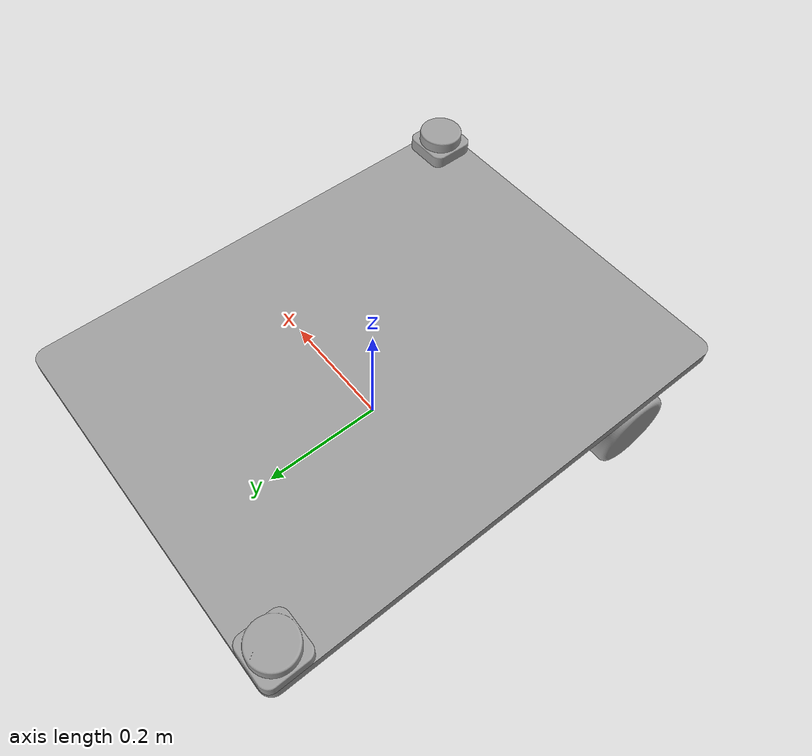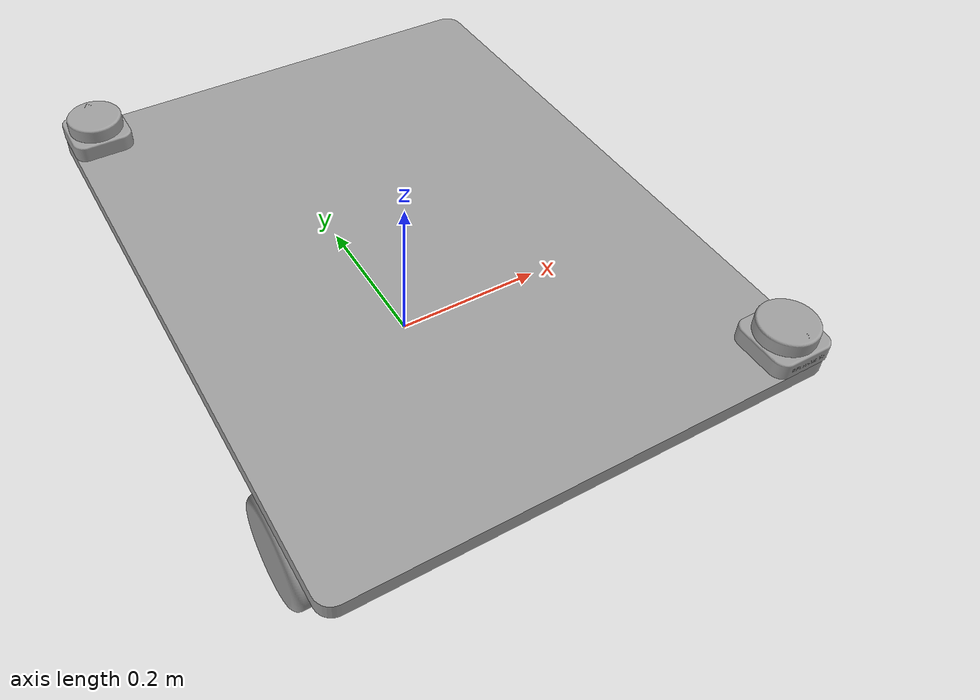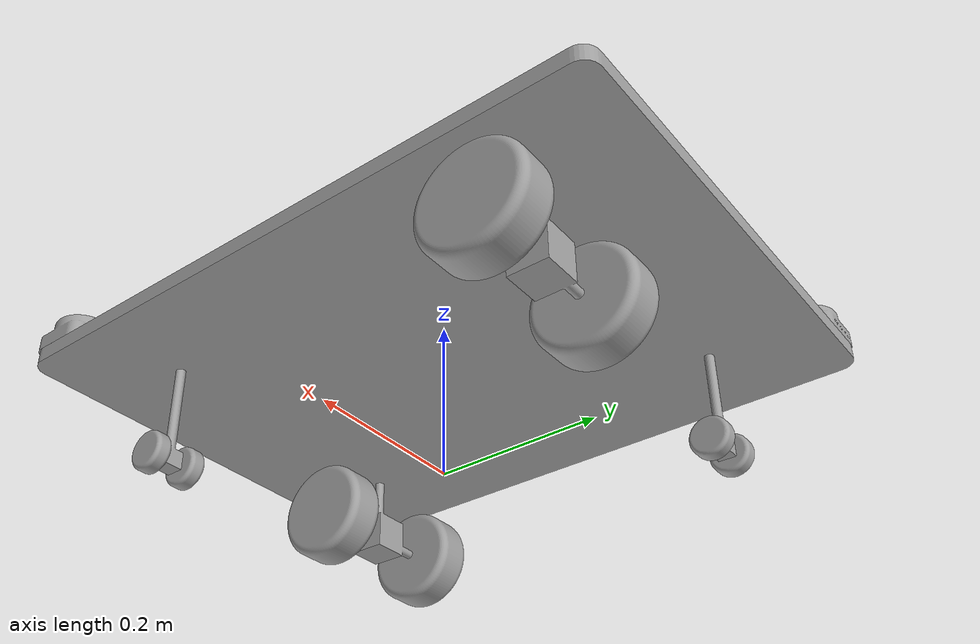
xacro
<?xml version="1.0" ?>
<robot name="ats"
    xmlns:xacro="http://www.ros.org/wiki/xacro">

    <xacro:include filename="$(find ats_description)/urdf/materials.xacro" />
    <xacro:include filename="$(find ats_description)/urdf/ats.trans" />
    <xacro:include filename="$(find ats_description)/urdf/ats.gazebo" />

    <!-- Macro Properties -->

    <!-- Varliables -->
    <xacro:property name="PI" value="3.1415926"/>

    <!-- Color -->
    <material name="black">
        <color rgba="0.0 0.0 0.0 1.0"/>
    </material>

    <!-- Chassis Properties -->
    <xacro:property name="base_link_length" value="0.1"/>
    <xacro:property name="base_link_width" value="0.08"/>
    <xacro:property name="ground_distance" value=""/>

    <!-- ########## 连杆 ########## -->

    <!-- 虚拟连杆：消除惯性 -->
    <link name="dummy">
    </link>

    <!-- 根连杆 -->
    <link name="base_link">
        <inertial>
            <origin xyz="-3.5381115631119146e-07 -6.069851163093431e-17 0.15800171643032818" rpy="0 0 0"/>
            <mass value="75.278639606354"/>
            <inertia ixx="3.911899" iyy="2.314591" izz="6.221472" ixy="-3.1e-05" iyz="0.0" ixz="-0.0"/>
        </inertial>
        <visual>
            <origin xyz="0 0 0" rpy="0 0 0"/>
            <geometry>
                <mesh filename="package://ats_description/meshes/base_link.stl" scale="0.001 0.001 0.001"/>
            </geometry>
            <material name="_"/>
        </visual>
        <collision>
            <origin xyz="0 0 0" rpy="0 0 0"/>
            <geometry>
                <mesh filename="package://ats_description/meshes/base_link.stl" scale="0.001 0.001 0.001"/>
            </geometry>
        </collision>
    </link>

    <!-- RPLiDAR S2 1 -->
    <link name="rplidar_s2_1_1">
        <inertial>
            <origin xyz="-5.069135639579336e-07 -1.9284390547769092e-05 0.017499881114527827" rpy="0 0 0"/>
            <mass value="1.4755797019735095"/>
            <inertia ixx="0.000778" iyy="0.000779" izz="0.001203" ixy="0.0" iyz="-0.0" ixz="-0.0"/>
        </inertial>
        <visual>
            <origin xyz="0.26526 -0.3565 -0.168" rpy="0 0 0"/>
            <geometry>
                <mesh filename="package://ats_description/meshes/rplidar_s2_1_1.stl" scale="0.001 0.001 0.001"/>
            </geometry>
            <material name="_"/>
        </visual>
        <collision>
            <origin xyz="0.26526 -0.3565 -0.168" rpy="0 0 0"/>
            <geometry>
                <mesh filename="package://ats_description/meshes/rplidar_s2_1_1.stl" scale="0.001 0.001 0.001"/>
            </geometry>
        </collision>
    </link>

    <!-- RPLiDAR S2 2 -->
    <link name="rplidar_s2_2_1">
        <inertial>
            <origin xyz="5.069135636248667e-07 1.9284390547769092e-05 0.017499881114527854" rpy="0 0 0"/>
            <mass value="1.4755797019735115"/>
            <inertia ixx="0.000778" iyy="0.000779" izz="0.001203" ixy="0.0" iyz="0.0" ixz="0.0"/>
        </inertial>
        <visual>
            <origin xyz="-0.26526 0.3565 -0.168" rpy="0 0 0"/>
            <geometry>
                <mesh filename="package://ats_description/meshes/rplidar_s2_2_1.stl" scale="0.001 0.001 0.001"/>
            </geometry>
            <material name="_"/>
        </visual>
        <collision>
            <origin xyz="-0.26526 0.3565 -0.168" rpy="0 0 0"/>
            <geometry>
                <mesh filename="package://ats_description/meshes/rplidar_s2_2_1.stl" scale="0.001 0.001 0.001"/>
            </geometry>
        </collision>
    </link>

    <!-- 脚轮 1 -->
    <link name="caster_1_1">
        <inertial>
            <origin xyz="-1.6391285551087265e-10 0.0 6.938893903907228e-18" rpy="0 0 0"/>
            <mass value="0.6178921156215165"/>
            <inertia ixx="0.000179" iyy="0.000479" izz="0.000479" ixy="-0.0" iyz="0.0" ixz="-0.0"/>
        </inertial>
        <visual>
            <origin xyz="0.17926 -0.26 -0.025" rpy="0 0 0"/>
            <geometry>
                <mesh filename="package://ats_description/meshes/caster_1_1.stl" scale="0.001 0.001 0.001"/>
            </geometry>
            <material name="_"/>
        </visual>
        <collision>
            <origin xyz="0.17926 -0.26 -0.025" rpy="0 0 0"/>
            <geometry>
                <mesh filename="package://ats_description/meshes/caster_1_1.stl" scale="0.001 0.001 0.001"/>
            </geometry>
        </collision>
    </link>

    <!-- 脚轮 2 -->
    <link name="caster_2_1">
        <inertial>
            <origin xyz="-1.6391291102202388e-10 0.0 3.469446951953614e-18" rpy="0 0 0"/>
            <mass value="0.6178921156215165"/>
            <inertia ixx="0.000179" iyy="0.000479" izz="0.000479" ixy="0.0" iyz="0.0" ixz="0.0"/>
        </inertial>
        <visual>
            <origin xyz="-0.18526 0.26 -0.025" rpy="0 0 0"/>
            <geometry>
                <mesh filename="package://ats_description/meshes/caster_2_1.stl" scale="0.001 0.001 0.001"/>
            </geometry>
            <material name="_"/>
        </visual>
        <collision>
            <origin xyz="-0.18526 0.26 -0.025" rpy="0 0 0"/>
            <geometry>
                <mesh filename="package://ats_description/meshes/caster_2_1.stl" scale="0.001 0.001 0.001"/>
            </geometry>
        </collision>
    </link>

    <!-- 轮毂电机 1 -->
    <link name="wheel_1_1">
        <inertial>
            <origin xyz="5.774982647643867e-05 0.0 1.3877787807814457e-17" rpy="0 0 0"/>
            <mass value="4.998293010395846"/>
            <inertia ixx="0.01005" iyy="0.006066" izz="0.006066" ixy="-0.0" iyz="0.0" ixz="0.0"/>
        </inertial>
        <visual>
            <origin xyz="-0.27826 -0.26 -0.064" rpy="0 0 0"/>
            <geometry>
                <mesh filename="package://ats_description/meshes/wheel_1_1.stl" scale="0.001 0.001 0.001"/>
            </geometry>
            <material name="_"/>
        </visual>
        <collision>
            <origin xyz="-0.27826 -0.26 -0.064" rpy="0 0 0"/>
            <geometry>
                <mesh filename="package://ats_description/meshes/wheel_1_1.stl" scale="0.001 0.001 0.001"/>
            </geometry>
        </collision>
    </link>

    <!-- 轮毂电机转接 1 -->
    <link name="adapter_1_1">
        <inertial>
            <origin xyz="-1.1102230246251565e-16 0.0 -0.08577726603955564" rpy="0 0 0"/>
            <mass value="1.0536485500536665"/>
            <inertia ixx="0.000533" iyy="0.001" izz="0.000804" ixy="0.0" iyz="-0.0" ixz="0.0"/>
        </inertial>
        <visual>
            <origin xyz="-0.18526 -0.26 -0.153" rpy="0 0 0"/>
            <geometry>
                <mesh filename="package://ats_description/meshes/adapter_1_1.stl" scale="0.001 0.001 0.001"/>
            </geometry>
            <material name="_"/>
        </visual>
        <collision>
            <origin xyz="-0.18526 -0.26 -0.153" rpy="0 0 0"/>
            <geometry>
                <mesh filename="package://ats_description/meshes/adapter_1_1.stl" scale="0.001 0.001 0.001"/>
            </geometry>
        </collision>
    </link>

    <!-- 轮毂电机转接 2 -->
    <link name="adapter_2_1">
        <inertial>
            <origin xyz="-8.326672684688674e-17 0.0 -0.08577726603955564" rpy="0 0 0"/>
            <mass value="1.0536485500536665"/>
            <inertia ixx="0.000533" iyy="0.001" izz="0.000804" ixy="-0.0" iyz="0.0" ixz="0.0"/>
        </inertial>
        <visual>
            <origin xyz="0.18526 0.26 -0.153" rpy="0 0 0"/>
            <geometry>
                <mesh filename="package://ats_description/meshes/adapter_2_1.stl" scale="0.001 0.001 0.001"/>
            </geometry>
            <material name="_"/>
        </visual>
        <collision>
            <origin xyz="0.18526 0.26 -0.153" rpy="0 0 0"/>
            <geometry>
                <mesh filename="package://ats_description/meshes/adapter_2_1.stl" scale="0.001 0.001 0.001"/>
            </geometry>
        </collision>
    </link>

    <!-- 轮毂电机 2 -->
    <link name="wheel_2_1">
        <inertial>
            <origin xyz="-5.774982647667459e-05 0.0 1.3877787807814457e-17" rpy="0 0 0"/>
            <mass value="4.998293010395846"/>
            <inertia ixx="0.01005" iyy="0.006066" izz="0.006066" ixy="0.0" iyz="0.0" ixz="0.0"/>
        </inertial>
        <visual>
            <origin xyz="-0.09226 -0.26 -0.064" rpy="0 0 0"/>
            <geometry>
                <mesh filename="package://ats_description/meshes/wheel_2_1.stl" scale="0.001 0.001 0.001"/>
            </geometry>
            <material name="_"/>
        </visual>
        <collision>
            <origin xyz="-0.09226 -0.26 -0.064" rpy="0 0 0"/>
            <geometry>
                <mesh filename="package://ats_description/meshes/wheel_2_1.stl" scale="0.001 0.001 0.001"/>
            </geometry>
        </collision>
    </link>

    <!-- 轮毂电机 3 -->
    <link name="wheel_3_1">
        <inertial>
            <origin xyz="-5.7749826476660715e-05 0.0 1.3877787807814457e-17" rpy="0 0 0"/>
            <mass value="4.998293010395846"/>
            <inertia ixx="0.01005" iyy="0.006066" izz="0.006066" ixy="0.0" iyz="0.0" ixz="0.0"/>
        </inertial>
        <visual>
            <origin xyz="0.27826 0.26 -0.064" rpy="0 0 0"/>
            <geometry>
                <mesh filename="package://ats_description/meshes/wheel_3_1.stl" scale="0.001 0.001 0.001"/>
            </geometry>
            <material name="_"/>
        </visual>
        <collision>
            <origin xyz="0.27826 0.26 -0.064" rpy="0 0 0"/>
            <geometry>
                <mesh filename="package://ats_description/meshes/wheel_3_1.stl" scale="0.001 0.001 0.001"/>
            </geometry>
        </collision>
    </link>

    <!-- 轮毂电机 4 -->
    <link name="wheel_4_1">
        <inertial>
            <origin xyz="5.7749826476466426e-05 0.0 1.3877787807814457e-17" rpy="0 0 0"/>
            <mass value="4.998293010395846"/>
            <inertia ixx="0.01005" iyy="0.006066" izz="0.006066" ixy="-0.0" iyz="0.0" ixz="0.0"/>
        </inertial>
        <visual>
            <origin xyz="0.09226 0.26 -0.064" rpy="0 0 0"/>
            <geometry>
                <mesh filename="package://ats_description/meshes/wheel_4_1.stl" scale="0.001 0.001 0.001"/>
            </geometry>
            <material name="_"/>
        </visual>
        <collision>
            <origin xyz="0.09226 0.26 -0.064" rpy="0 0 0"/>
            <geometry>
                <mesh filename="package://ats_description/meshes/wheel_4_1.stl" scale="0.001 0.001 0.001"/>
            </geometry>
        </collision>
    </link>

    <!-- 脚轮转接 2 -->
    <link name="caster_adapter_2_1">
        <inertial>
            <origin xyz="-1.6425794058250176e-10 -3.6137759451548845e-14 -0.08518001846489567" rpy="0 0 0"/>
            <mass value="0.16884779283286586"/>
            <inertia ixx="0.000318" iyy="0.000318" izz="8e-06" ixy="-0.0" iyz="-0.0" ixz="-0.0"/>
        </inertial>
        <visual>
            <origin xyz="-0.18526 0.26 -0.153" rpy="0 0 0"/>
            <geometry>
                <mesh filename="package://ats_description/meshes/caster_adapter_2_1.stl" scale="0.001 0.001 0.001"/>
            </geometry>
            <material name="_"/>
        </visual>
        <collision>
            <origin xyz="-0.18526 0.26 -0.153" rpy="0 0 0"/>
            <geometry>
                <mesh filename="package://ats_description/meshes/caster_adapter_2_1.stl" scale="0.001 0.001 0.001"/>
            </geometry>
        </collision>
    </link>

    <!-- 脚轮转接 1 -->
    <link name="caster_adapter_1_1">
        <inertial>
            <origin xyz="-1.6425791282692614e-10 -3.6193270602780103e-14 -0.08518001846489567" rpy="0 0 0"/>
            <mass value="0.16884779283286586"/>
            <inertia ixx="0.000318" iyy="0.000318" izz="8e-06" ixy="-0.0" iyz="-0.0" ixz="-0.0"/>
        </inertial>
        <visual>
            <origin xyz="0.17926 -0.26 -0.153" rpy="0 0 0"/>
            <geometry>
                <mesh filename="package://ats_description/meshes/caster_adapter_1_1.stl" scale="0.001 0.001 0.001"/>
            </geometry>
            <material name="_"/>
        </visual>
        <collision>
            <origin xyz="0.17926 -0.26 -0.153" rpy="0 0 0"/>
            <geometry>
                <mesh filename="package://ats_description/meshes/caster_adapter_1_1.stl" scale="0.001 0.001 0.001"/>
            </geometry>
        </collision>
    </link>

    <!-- ########## 关节 ########## -->

    <!-- rplidar_s2_1 -> base_link 固定 -->
    <joint name="Rigid_1" type="fixed">
        <origin xyz="-0.26526 0.3565 0.168" rpy="0 0 0"/>
        <parent link="base_link"/>
        <child link="rplidar_s2_1_1"/>
    </joint>

    <!-- rplidar_s2_2 -> base_link 固定 -->
    <joint name="Rigid_2" type="fixed">
        <origin xyz="0.26526 -0.3565 0.168" rpy="0 0 0"/>
        <parent link="base_link"/>
        <child link="rplidar_s2_2_1"/>
    </joint>

    <!-- caster_1 -> caster_adapter_1 旋转 -->
    <joint name="Revolute_7" type="continuous">
        <origin xyz="0.0 0.0 -0.128" rpy="0 0 0"/>
        <parent link="caster_adapter_1_1"/>
        <child link="caster_1_1"/>
        <axis xyz="-1.0 0.0 0.0"/>
    </joint>

    <!-- caster_2 -> caster_adapter_2 旋转 -->
    <joint name="Revolute_8" type="continuous">
        <origin xyz="0.0 0.0 -0.128" rpy="0 0 0"/>
        <parent link="caster_adapter_2_1"/>
        <child link="caster_2_1"/>
        <axis xyz="1.0 0.0 0.0"/>
    </joint>

    <!-- wheel_1 -> adapter_1 旋转 -->
    <joint name="Revolute_1" type="continuous">
        <origin xyz="0.093 0.0 -0.089" rpy="0 0 0"/>
        <parent link="adapter_1_1"/>
        <child link="wheel_1_1"/>
        <axis xyz="1.0 0.0 0.0"/>
    </joint>

    <!-- adapter_1 -> base_link 旋转 -->
    <joint name="Revolute_2" type="continuous">
        <origin xyz="0.18526 0.26 0.153" rpy="0 0 0"/>
        <parent link="base_link"/>
        <child link="adapter_1_1"/>
        <axis xyz="0.0 0.0 -1.0"/>
    </joint>

    <!-- adapter_2 -> base_link 旋转 -->
    <joint name="Revolute_5" type="continuous">
        <origin xyz="-0.18526 -0.26 0.153" rpy="0 0 0"/>
        <parent link="base_link"/>
        <child link="adapter_2_1"/>
        <axis xyz="0.0 0.0 -1.0"/>
    </joint>

    <!-- wheel_2 -> adapter_1 旋转 -->
    <joint name="Revolute_3" type="continuous">
        <origin xyz="-0.093 0.0 -0.089" rpy="0 0 0"/>
        <parent link="adapter_1_1"/>
        <child link="wheel_2_1"/>
        <axis xyz="-1.0 0.0 0.0"/>
    </joint>

    <!-- wheel_3 -> adapter_2 旋转 -->
    <joint name="Revolute_4" type="continuous">
        <origin xyz="-0.093 0.0 -0.089" rpy="0 0 0"/>
        <parent link="adapter_2_1"/>
        <child link="wheel_3_1"/>
        <axis xyz="-1.0 0.0 0.0"/>
    </joint>

    <!-- wheel_4 -> adapter_2 旋转 -->
    <joint name="Revolute_6" type="continuous">
        <origin xyz="0.093 0.0 -0.089" rpy="0 0 0"/>
        <parent link="adapter_2_1"/>
        <child link="wheel_4_1"/>
        <axis xyz="1.0 0.0 0.0"/>
    </joint>

    <!-- caster_adapter_2 -> base_link 旋转 -->
    <joint name="Revolute_10" type="continuous">
        <origin xyz="0.18526 -0.26 0.153" rpy="0 0 0"/>
        <parent link="base_link"/>
        <child link="caster_adapter_2_1"/>
        <axis xyz="0.0 0.0 -1.0"/>
    </joint>

    <!-- caster_adapter_1 -> base_link 旋转 -->
    <joint name="Revolute_9" type="continuous">
        <origin xyz="-0.17926 0.26 0.153" rpy="0 0 0"/>
        <parent link="base_link"/>
        <child link="caster_adapter_1_1"/>
        <axis xyz="0.0 0.0 -1.0"/>
    </joint>

    <!-- 虚拟关节：消除惯性 -->
    <joint name="dummy_joint" type="fixed">
        <parent link="dummy"/>
        <child link="base_link"/>
    </joint>

    <!-- Gazebo 中的颜色设置 -->

    <!-- 传动实现:用于连接控制器与关节 -->
    <xacro:macro name="joint_trans" params="joint_name">
        <!-- Transmission is important to link the joints and the controller -->
        <transmission name="${joint_name}_trans">
            <type>transmission_interface/SimpleTransmission</type>
            <joint name="${joint_name}">
                <hardwareInterface>hardware_interface/VelocityJointInterface</hardwareInterface>
            </joint>
            <actuator name="${joint_name}_motor">
                <hardwareInterface>hardware_interface/VelocityJointInterface</hardwareInterface>
                <mechanicalReduction>1</mechanicalReduction>
            </actuator>
        </transmission>
    </xacro:macro>

    <!-- 每一个驱动轮都需要配置传动装置 -->
    <xacro:joint_trans joint_name="left_wheel2base_link" />
    <xacro:joint_trans joint_name="right_wheel2base_link" />

    <!-- 控制器 -->
    <gazebo>
        <plugin name="differential_drive_controller" filename="libgazebo_ros_diff_drive.so">
            <rosDebugLevel>Debug</rosDebugLevel>
            <publishWheelTF>true</publishWheelTF>
            <robotNamespace>/</robotNamespace>
            <publishTf>1</publishTf>
            <publishWheelJointState>true</publishWheelJointState>
            <alwaysOn>true</alwaysOn>
            <updateRate>100.0</updateRate>
            <legacyMode>true</legacyMode>
            <leftJoint>left_wheel2base_link</leftJoint> <!-- 左轮 -->
            <rightJoint>right_wheel2base_link</rightJoint> <!-- 右轮 -->
            <wheelSeparation>${base_link_radius * 2}</wheelSeparation> <!-- 车轮间距 -->
            <wheelDiameter>${wheel_radius * 2}</wheelDiameter> <!-- 车轮直径 -->
            <broadcastTF>1</broadcastTF>
            <wheelTorque>30</wheelTorque>
            <wheelAcceleration>1.8</wheelAcceleration>
            <commandTopic>cmd_vel</commandTopic> <!-- 运动控制话题 -->
            <odometryFrame>odom</odometryFrame>
            <odometryTopic>odom</odometryTopic> <!-- 里程计话题 -->
            <robotBaseFrame>base_footprint</robotBaseFrame> <!-- 根坐标系 -->
        </plugin>
    </gazebo>

</robot>

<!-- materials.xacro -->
<robot name="ats"
    xmlns:xacro="http://www.ros.org/wiki/xacro">

    <material name="silver_default">
        <color rgba="0.700 0.700 0.700 1.000"/>
    </material>
    <material name="_">
        <color rgba="0.6274509803921569 0.6274509803921569 0.6274509803921569 1.0"/>
    </material>

</robot>

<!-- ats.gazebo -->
<robot name="ats"
    xmlns:xacro="http://www.ros.org/wiki/xacro">

    <xacro:property name="body_color" value="Gazebo/Silver" />

    <gazebo>
        <plugin name="control" filename="libgazebo_ros_control.so"/>
    </gazebo>
    <gazebo reference="base_link">
        <material>${body_color}</material>
        <mu1>0.2</mu1>
        <mu2>0.2</mu2>
        <selfCollide>true</selfCollide>
        <gravity>true</gravity>
    </gazebo>

    <gazebo reference="rplidar_s2_1_1">
        <material>${body_color}</material>
        <mu1>0.2</mu1>
        <mu2>0.2</mu2>
        <selfCollide>true</selfCollide>
    </gazebo>

    <gazebo reference="rplidar_s2_2_1">
        <material>${body_color}</material>
        <mu1>0.2</mu1>
        <mu2>0.2</mu2>
        <selfCollide>true</selfCollide>
    </gazebo>

    <gazebo reference="caster_1_1">
        <material>${body_color}</material>
        <mu1>0.2</mu1>
        <mu2>0.2</mu2>
        <selfCollide>true</selfCollide>
    </gazebo>

    <gazebo reference="caster_2_1">
        <material>${body_color}</material>
        <mu1>0.2</mu1>
        <mu2>0.2</mu2>
        <selfCollide>true</selfCollide>
    </gazebo>

    <gazebo reference="wheel_1_1">
        <material>${body_color}</material>
        <mu1>0.2</mu1>
        <mu2>0.2</mu2>
        <selfCollide>true</selfCollide>
    </gazebo>

    <gazebo reference="adapter_1_1">
        <material>${body_color}</material>
        <mu1>0.2</mu1>
        <mu2>0.2</mu2>
        <selfCollide>true</selfCollide>
    </gazebo>

    <gazebo reference="adapter_2_1">
        <material>${body_color}</material>
        <mu1>0.2</mu1>
        <mu2>0.2</mu2>
        <selfCollide>true</selfCollide>
    </gazebo>

    <gazebo reference="wheel_2_1">
        <material>${body_color}</material>
        <mu1>0.2</mu1>
        <mu2>0.2</mu2>
        <selfCollide>true</selfCollide>
    </gazebo>

    <gazebo reference="wheel_3_1">
        <material>${body_color}</material>
        <mu1>0.2</mu1>
        <mu2>0.2</mu2>
        <selfCollide>true</selfCollide>
    </gazebo>

    <gazebo reference="wheel_4_1">
        <material>${body_color}</material>
        <mu1>0.2</mu1>
        <mu2>0.2</mu2>
        <selfCollide>true</selfCollide>
    </gazebo>

    <gazebo reference="caster_adapter_2_1">
        <material>${body_color}</material>
        <mu1>0.2</mu1>
        <mu2>0.2</mu2>
        <selfCollide>true</selfCollide>
    </gazebo>

    <gazebo reference="caster_adapter_1_1">
        <material>${body_color}</material>
        <mu1>0.2</mu1>
        <mu2>0.2</mu2>
        <selfCollide>true</selfCollide>
    </gazebo>

</robot>
